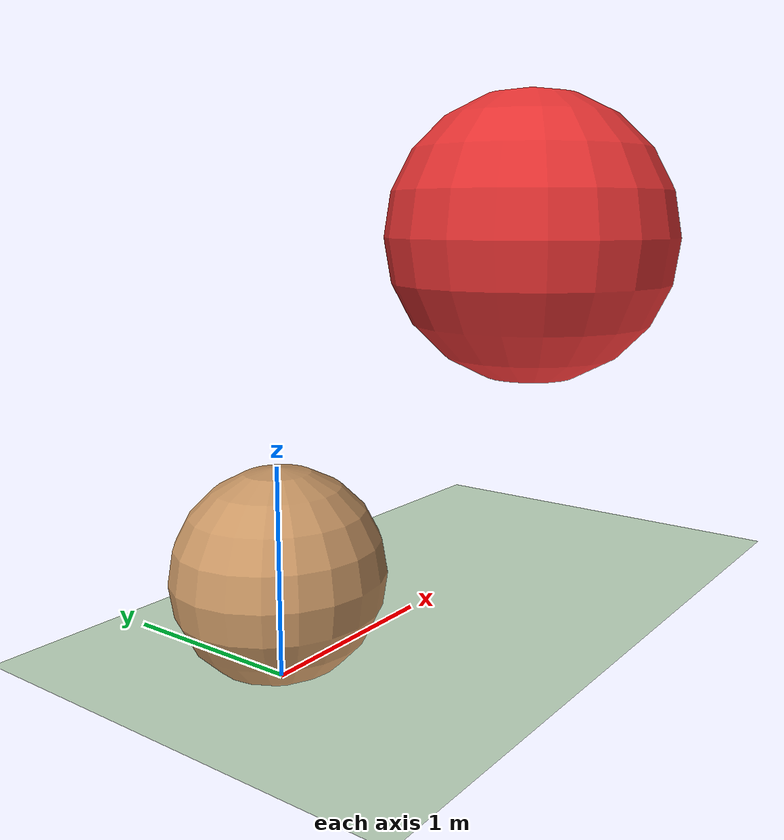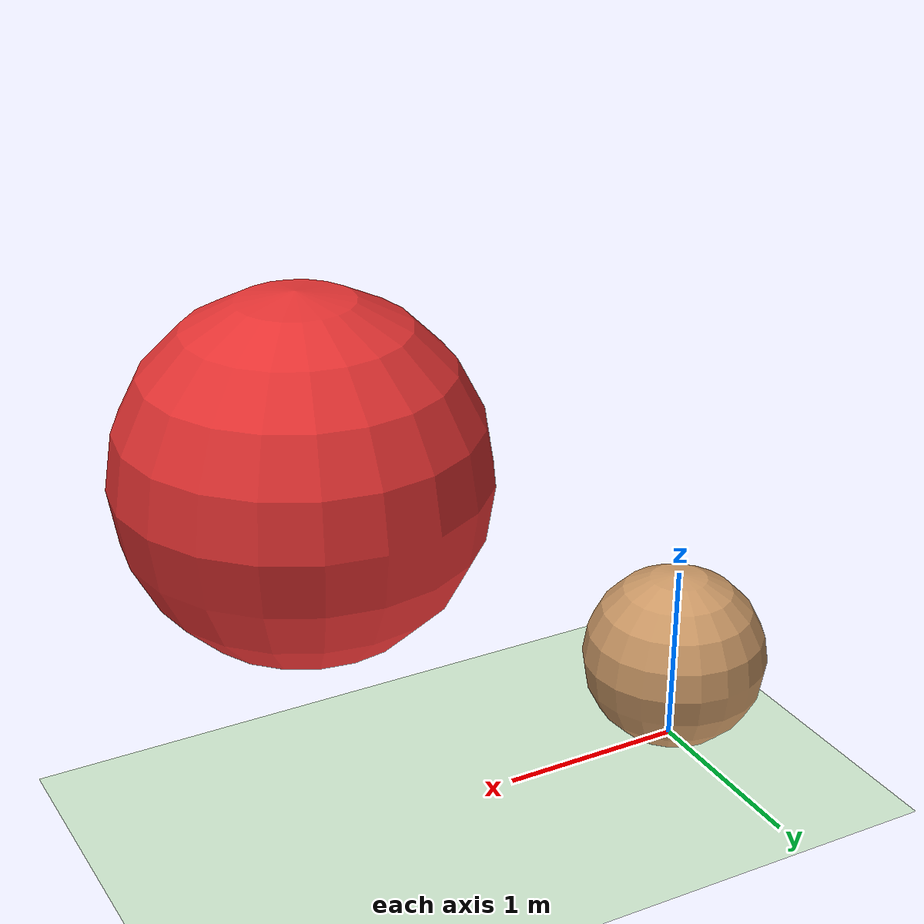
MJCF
<mujoco>
  <compiler angle="degree" coordinate="local" inertiafromgeom="true"/>
  <option integrator="RK4" timestep="0.02"/>
  <default>
    <joint armature="0" damping="0" limited="false"/>
    <geom conaffinity="0" condim="3" density="100" friction="1 0.5 0.5" margin="0" rgba="0.8 0.6 0.4 1"/>
  </default>
  <option timestep='0.01' gravity='0 0 -9.81' />
  <asset>
    <texture builtin="gradient" height="100" rgb1="1 1 1" rgb2="0 0 0" type="skybox" width="100"/>
    <texture builtin="flat" height="1278" mark="cross" markrgb="1 1 1" name="texgeom" random="0.01" rgb1="0.8 0.6 0.4" rgb2="0.8 0.6 0.4" type="cube" width="127"/>
    <texture builtin="checker" height="100" name="texplane" rgb1=".2 .3 .4" rgb2=".1 0.15 0.2" type="2d" width="100"/>
    <material name="MatPlane" reflectance="0.5" shininess="1" specular="1" texrepeat="30 30" texture="texplane"/>
    <material name="geom" texture="texgeom" texuniform="true"/>
  </asset>
  <worldbody>
    <light cutoff="100" diffuse="1 1 1" dir="-0 0 -1.3" directional="true" exponent="1" pos="0 0 1.3" specular=".1 .1 .1"/>
    <geom conaffinity="1" condim="3" material="MatPlane" name="floor" pos="0 0 0" rgba="0.8 0.9 0.8 1" size="40 40 40" type="plane"/>
    <body name="torso" pos="0 0 0">
      <geom name="pointbody" pos="0 0 0.5" size="0.5" type="sphere"/>
      <joint axis="1 0 0" name="ballx" pos="0 0 0" type="slide"/>
      <joint axis="0 1 0" name="bally" pos="0 0 0" type="slide"/>
      <joint axis="0 0 1" limited="false" name="rot" pos="0 0 0" type="hinge"/>
    </body>
    <!-- Target -->
    <body name="targetz" pos=".1 -.1 .01">
			<joint armature="0" axis="1 0 0" damping="0" limited="true" name="target_x" pos="0 0 0" range="-.27 .27" ref=".1" stiffness="0" type="slide"/>
			<joint armature="0" axis="0 1 0" damping="0" limited="true" name="target_y" pos="0 0 0" range="-.27 .27" ref="-.1" stiffness="0" type="slide"/>
			<geom name="targetz" pos="2 0 2" rgba="0.9 0.2 0.2 1" size=".9" type="sphere"/>
    </body>
  </worldbody>
  <actuator>
    <!-- Those are just dummy actuators for providing ranges -->
    <motor ctrllimited="true" ctrlrange="-100 100" joint="ballx"/>
    <motor ctrllimited="true" ctrlrange="-25 25" joint="rot"/>
  </actuator>
</mujoco>
